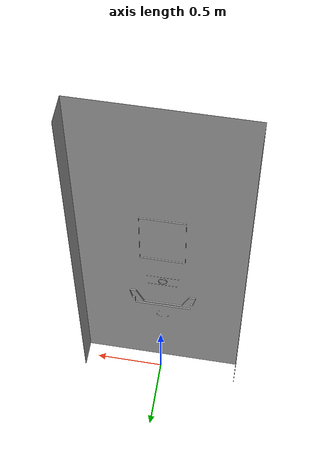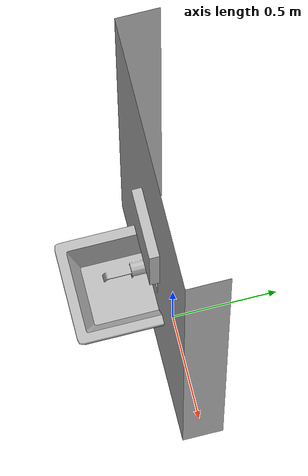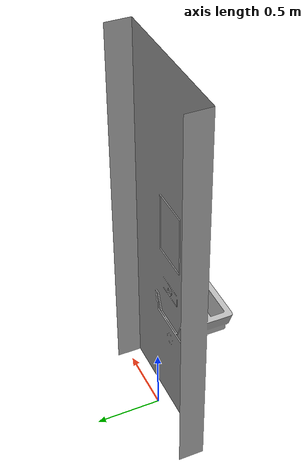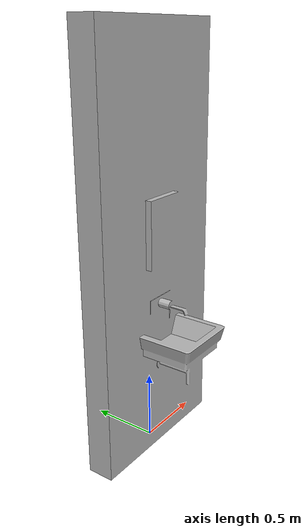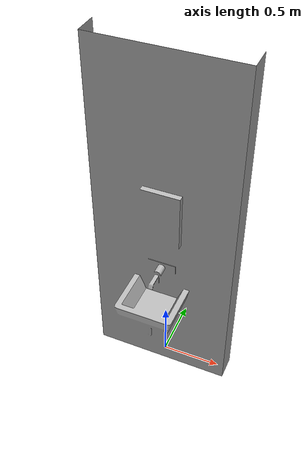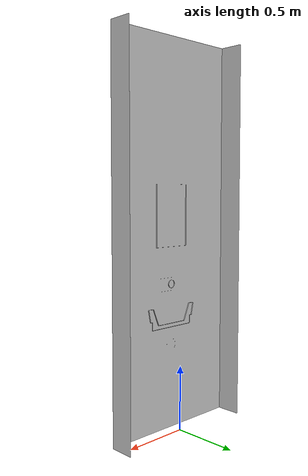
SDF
<?xml version="1.0" ?>
<sdf version="1.5">
  <model name="sink">
    <static>true</static>
    <link name="link">
      <collision name="collision">
        <geometry>
          <mesh>
            <uri>model://sink/meshes/sink.obj</uri>
            <scale>0.01 0.01 0.01</scale>
          </mesh>
        </geometry>
      </collision>
      <visual name="visual">
        <geometry>
          <mesh>
            <uri>model://sink/meshes/sink.obj</uri>
            <scale>0.01 0.01 0.01</scale>
          </mesh>
        </geometry>
      </visual>
    </link>
  </model>
</sdf>
